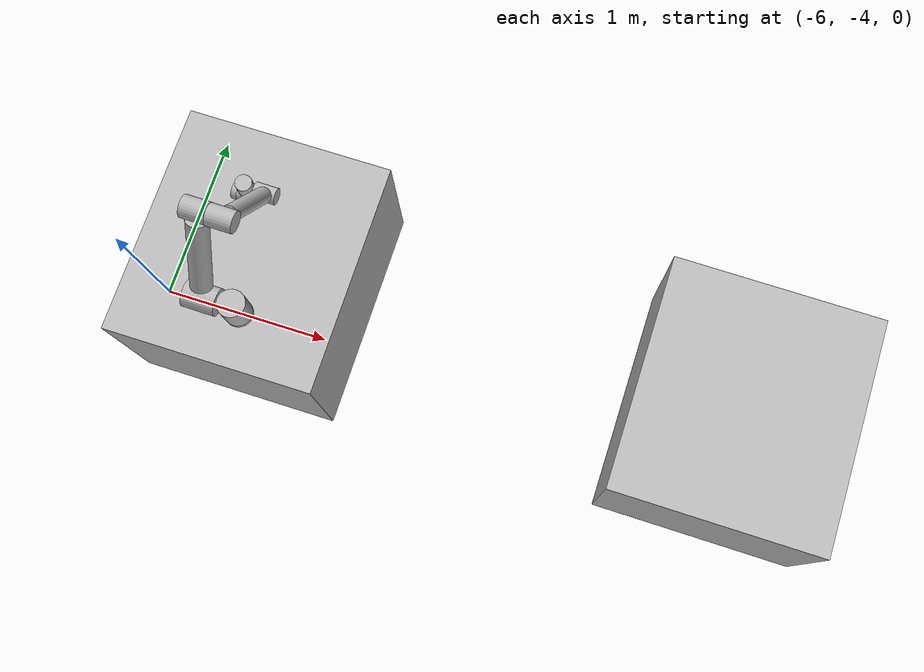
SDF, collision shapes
<sdf version="1.6">
 <model name="erica">
  <model name="cabinet1">
   <link name="link_0">
    <inertial>
     <mass>1</mass>
     <inertia>
      <ixx>0.166667</ixx>
      <ixy>0</ixy>
      <ixz>0</ixz>
      <iyy>0.166667</iyy>
      <iyz>0</iyz>
      <izz>0.166667</izz>
     </inertia>
    </inertial>
    <visual name="visual">
     <geometry>
      <mesh><uri>model://erica/elements/cabinet1/meshes/model.dae</uri><scale>0.15 0.15 0.15</scale></mesh>
     </geometry>
    </visual>
    <collision name="collision_1">
     <pose>0.17 0.03 0.5 0 -0 0</pose>
     <geometry><box><size>1.28 1.15 0.85</size></box></geometry>
     <surface>
      <friction>
       <ode><mu>1</mu><mu2>1</mu2><fdir1>0 0 0</fdir1><slip1>0</slip1><slip2>0</slip2></ode>
       <torsional>
        <coefficient>1</coefficient>
        <patch_radius>0</patch_radius>
        <surface_radius>0</surface_radius>
        <use_patch_radius>1</use_patch_radius>
        <ode><slip>0</slip></ode>
       </torsional>
      </friction>
      <bounce><restitution_coefficient>0</restitution_coefficient><threshold>1e+06</threshold></bounce>
      <contact>
       <collide_without_contact>0</collide_without_contact>
       <collide_without_contact_bitmask>1</collide_without_contact_bitmask>
       <collide_bitmask>1</collide_bitmask>
       <ode>
        <soft_cfm>0</soft_cfm>
        <soft_erp>0.2</soft_erp>
        <kp>1e+13</kp>
        <kd>1</kd>
        <max_vel>0.01</max_vel>
        <min_depth>0</min_depth>
       </ode>
       <bullet>
        <split_impulse>1</split_impulse>
        <split_impulse_penetration_threshold>-0.01</split_impulse_penetration_threshold>
        <soft_cfm>0</soft_cfm>
        <soft_erp>0.2</soft_erp>
        <kp>1e+13</kp>
        <kd>1</kd>
       </bullet>
      </contact>
     </surface>
    </collision>
   </link>
   <static>1</static>
   <pose>-5.31962 -3.98753 0 0 -0 1.57009</pose>
  </model>
  <model name="cabinet2_clone">
   <link name="link_2">
    <inertial>
     <mass>1</mass>
     <inertia>
      <ixx>0.166667</ixx>
      <ixy>0</ixy>
      <ixz>0</ixz>
      <iyy>0.166667</iyy>
      <iyz>0</iyz>
      <izz>0.166667</izz>
     </inertia>
    </inertial>
    <visual name="visual">
     <geometry>
      <mesh><uri>model://erica/elements/cabinet2/meshes/model.dae</uri><scale>0.15 0.15 0.15</scale></mesh>
     </geometry>
    </visual>
    <collision name="collision_1">
     <pose>0.17 0.03 0.5 0 -0 0</pose>
     <geometry><box><size>1.28 1.15 0.85</size></box></geometry>
     <surface>
      <friction>
       <ode><mu>1</mu><mu2>1</mu2><fdir1>0 0 0</fdir1><slip1>0</slip1><slip2>0</slip2></ode>
       <torsional>
        <coefficient>1</coefficient>
        <patch_radius>0</patch_radius>
        <surface_radius>0</surface_radius>
        <use_patch_radius>1</use_patch_radius>
        <ode><slip>0</slip></ode>
       </torsional>
      </friction>
      <bounce><restitution_coefficient>0</restitution_coefficient><threshold>1e+06</threshold></bounce>
      <contact>
       <collide_without_contact>0</collide_without_contact>
       <collide_without_contact_bitmask>1</collide_without_contact_bitmask>
       <collide_bitmask>1</collide_bitmask>
       <ode>
        <soft_cfm>0</soft_cfm>
        <soft_erp>0.2</soft_erp>
        <kp>1e+13</kp>
        <kd>1</kd>
        <max_vel>0.01</max_vel>
        <min_depth>0</min_depth>
       </ode>
       <bullet>
        <split_impulse>1</split_impulse>
        <split_impulse_penetration_threshold>-0.01</split_impulse_penetration_threshold>
        <soft_cfm>0</soft_cfm>
        <soft_erp>0.2</soft_erp>
        <kp>1e+13</kp>
        <kd>1</kd>
       </bullet>
      </contact>
     </surface>
    </collision>
   </link>
   <static>1</static>
   <pose>-2.5919 -3.99839 0 0 -0 1.56723</pose>
  </model>
  <model name="ur10">
   <link name="base">
    <inertial>
     <mass>4</mass>
     <inertia>
      <ixx>0.00610633</ixx>
      <ixy>0</ixy>
      <ixz>0</ixz>
      <iyy>0.00610633</iyy>
      <iyz>0</iyz>
      <izz>0.01125</izz>
     </inertia>
    </inertial>
    <collision name="collision">
     <pose>0 0 0.019 0 -0 0</pose>
     <geometry><cylinder><radius>0.075</radius><length>0.038</length></cylinder></geometry>
    </collision>
    <visual name="visual"><geometry><mesh><uri>model://ur10/meshes/base.dae</uri></mesh></geometry></visual>
   </link>
   <link name="shoulder">
    <pose>0 0 0.1273 0 -0 0</pose>
    <inertial>
     <mass>7.778</mass>
     <inertia>
      <ixx>0.0314743</ixx>
      <ixy>0</ixy>
      <ixz>0</ixz>
      <iyy>0.0314743</iyy>
      <iyz>0</iyz>
      <izz>0.0218756</izz>
     </inertia>
    </inertial>
    <collision name="collision">
     <geometry><cylinder><radius>0.075</radius><length>0.177</length></cylinder></geometry>
    </collision>
    <visual name="visual"><geometry><mesh><uri>model://ur10/meshes/shoulder.dae</uri></mesh></geometry></visual>
   </link>
   <link name="upper_arm">
    <pose>0 0.220941 0.1273 0 0.495268 0</pose>
    <inertial>
     <pose>0 0 0.306 0 -0 0</pose>
     <mass>12.93</mass>
     <inertia>
      <ixx>0.421754</ixx>
      <ixy>0</ixy>
      <ixz>0</ixz>
      <iyy>0.421754</iyy>
      <iyz>0</iyz>
      <izz>0.0363656</izz>
     </inertia>
    </inertial>
    <collision name="collision1">
     <pose>0 -0.045 0 1.5707 -0 0</pose>
     <geometry><cylinder><radius>0.075</radius><length>0.177</length></cylinder></geometry>
    </collision>
    <collision name="collision2">
     <pose>0 -0.0436 0.32 0 -0 1.5707</pose>
     <geometry><cylinder><radius>0.058</radius><length>0.461</length></cylinder></geometry>
    </collision>
    <collision name="collision3">
     <pose>0 -0.04 0.613 1.5707 -0 0</pose>
     <geometry><cylinder><radius>0.058</radius><length>0.129</length></cylinder></geometry>
    </collision>
    <visual name="visual"><geometry><mesh><uri>model://ur10/meshes/upperarm.dae</uri></mesh></geometry></visual>
   </link>
   <link name="forearm">
    <pose>0.290881 0.049041 0.663009 -3.14159 0.593801 -3.14159</pose>
    <inertial>
     <pose>0 0 0.28615 0 -0 0</pose>
     <mass>3.87</mass>
     <inertia>
      <ixx>0.11107</ixx>
      <ixy>0</ixy>
      <ixz>0</ixz>
      <iyy>0.11107</iyy>
      <iyz>0</iyz>
      <izz>0.0108844</izz>
     </inertia>
    </inertial>
    <collision name="collision1">
     <pose>0 0 0.001 1.5707 -0 0</pose>
     <geometry><cylinder><radius>0.058</radius><length>0.136</length></cylinder></geometry>
    </collision>
    <collision name="collision2">
     <pose>0 0 0.305 0 -0 1.5707</pose>
     <geometry><cylinder><radius>0.045</radius><length>0.447</length></cylinder></geometry>
    </collision>
    <collision name="collision3">
     <pose>0 0.001 0.5735 1.5707 -0 0</pose>
     <geometry><cylinder><radius>0.045</radius><length>0.119</length></cylinder></geometry>
    </collision>
    <visual name="visua"><geometry><mesh><uri>model://ur10/meshes/forearm.dae</uri></mesh></geometry></visual>
   </link>
   <link name="wrist_1">
    <pose>0.612763 0.048289 0.188032 3.14159 -0 3.14159</pose>
    <inertial>
     <mass>1.96</mass>
     <inertia>
      <ixx>0.00510825</ixx>
      <ixy>0</ixy>
      <ixz>0</ixz>
      <iyy>0.00510825</iyy>
      <iyz>0</iyz>
      <izz>0.0055125</izz>
     </inertia>
    </inertial>
    <collision name="collision">
     <pose>0 0.115 0.0025 0 -0 0</pose>
     <geometry><cylinder><radius>0.0455</radius><length>0.119</length></cylinder></geometry>
    </collision>
    <visual name="visual"><geometry><mesh><uri>model://ur10/meshes/wrist1.dae</uri></mesh></geometry></visual>
   </link>
   <link name="wrist_2">
    <pose>0.612784 0.163041 0.188126 3.14159 -0 3.14159</pose>
    <inertial>
     <mass>1.96</mass>
     <inertia>
      <ixx>0.00510825</ixx>
      <ixy>0</ixy>
      <ixz>0</ixz>
      <iyy>0.00510825</iyy>
      <iyz>0</iyz>
      <izz>0.0055125</izz>
     </inertia>
    </inertial>
    <collision name="collision">
     <pose>0 0.002 0.11659 1.5707 -0 0</pose>
     <geometry><cylinder><radius>0.0455</radius><length>0.119</length></cylinder></geometry>
    </collision>
    <visual name="visual"><geometry><mesh><uri>model://ur10/meshes/wrist2.dae</uri></mesh></geometry></visual>
   </link>
   <link name="wrist_3">
    <pose>0.612058 0.163655 0.072656 3.14159 -0 3.14159</pose>
    <inertial>
     <mass>0.202</mass>
     <inertia>
      <ixx>0.000526462</ixx>
      <ixy>0</ixy>
      <ixz>0</ixz>
      <iyy>0.000526462</iyy>
      <iyz>0</iyz>
      <izz>0.000568125</izz>
     </inertia>
    </inertial>
    <collision name="collision">
     <pose>0 0.0765 0 1.5707 -0 0</pose>
     <geometry><cylinder><radius>0.045</radius><length>0.031</length></cylinder></geometry>
    </collision>
    <visual name="visual"><geometry><mesh><uri>model://ur10/meshes/wrist3.dae</uri></mesh></geometry></visual>
   </link>
   <static>1</static>
   <pose>-5.26925 -4.16705 0.907896 0 -0 1.56</pose>
  </model>
  <static>1</static>
 </model>
</sdf>
